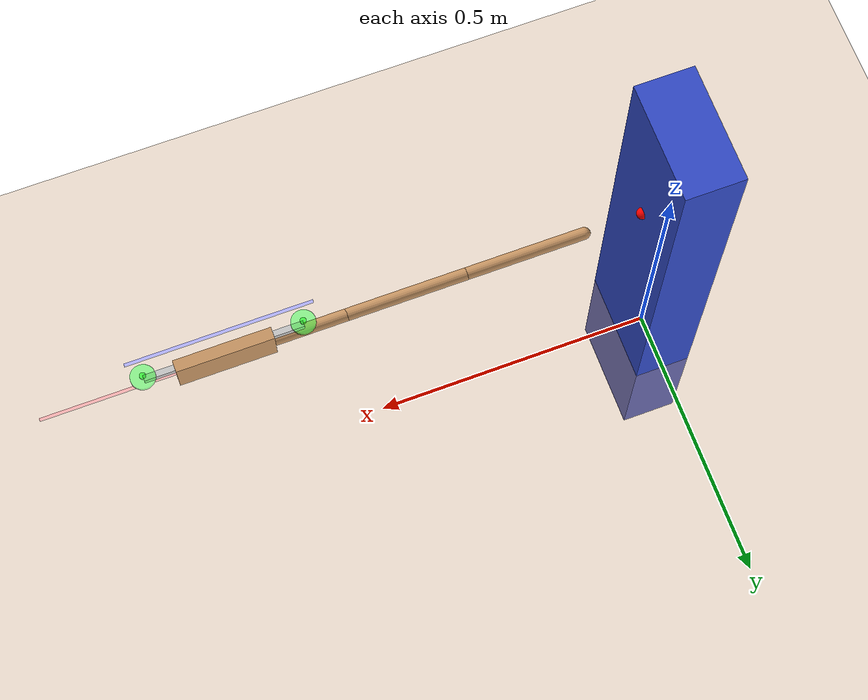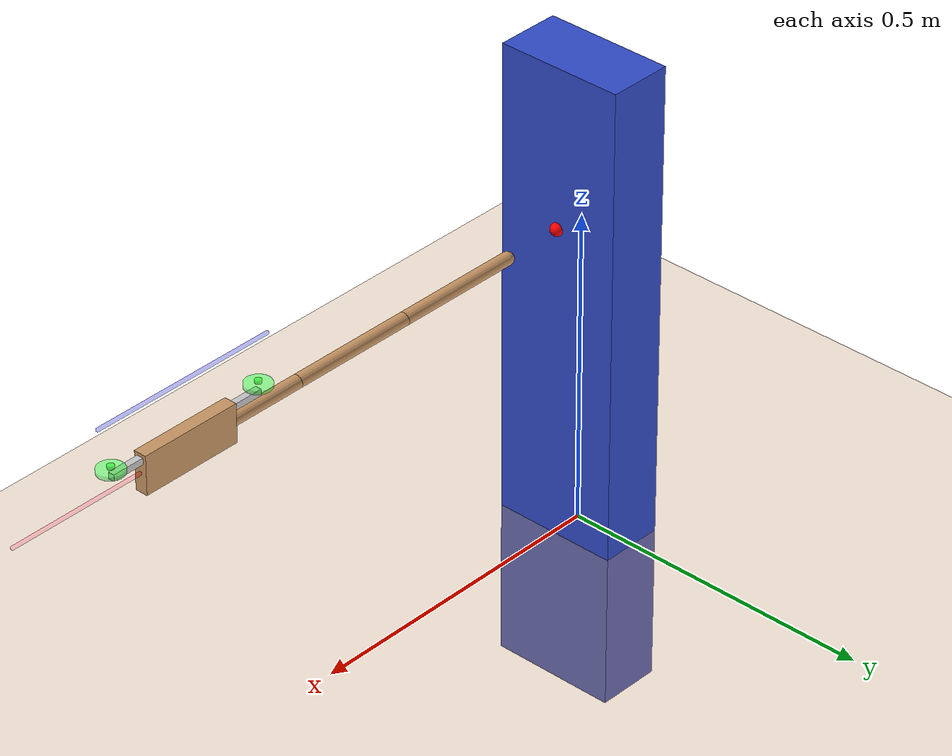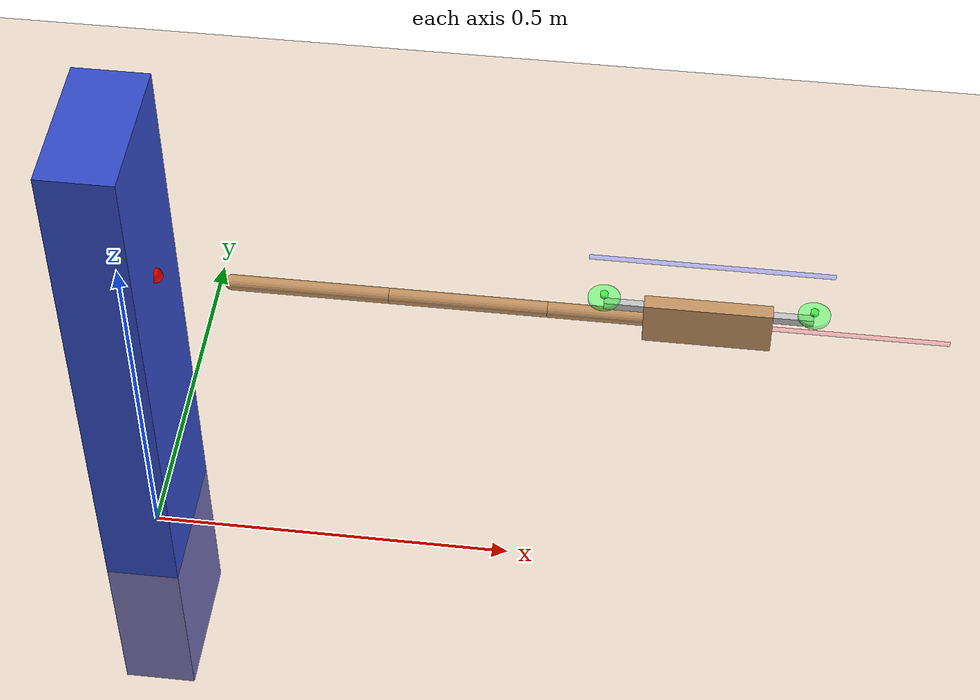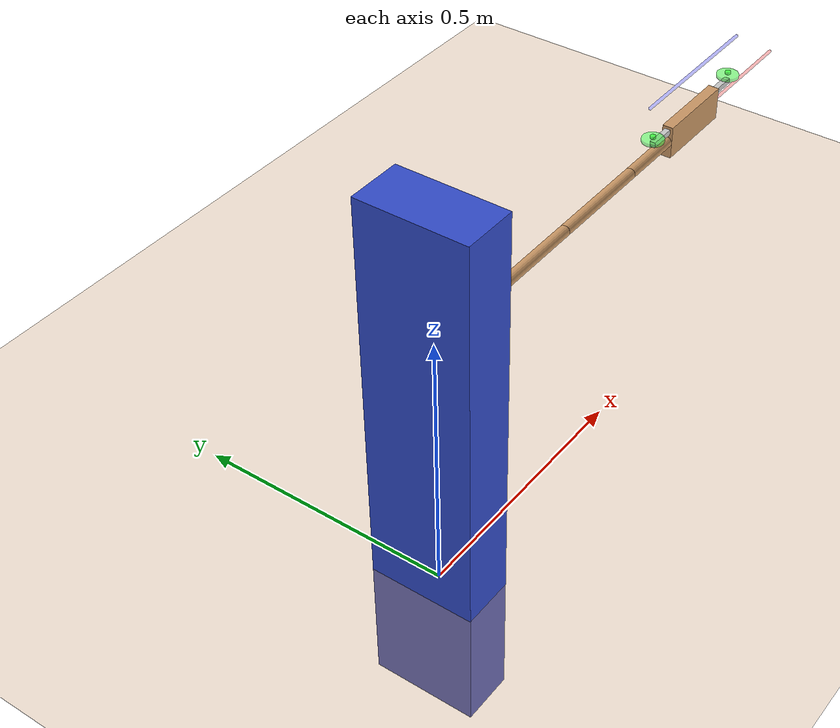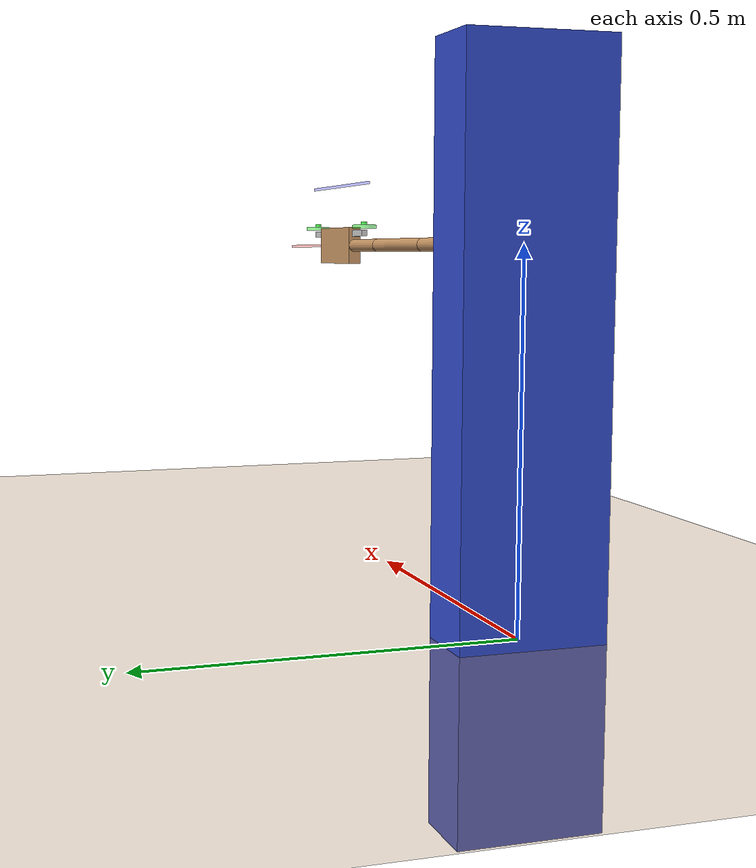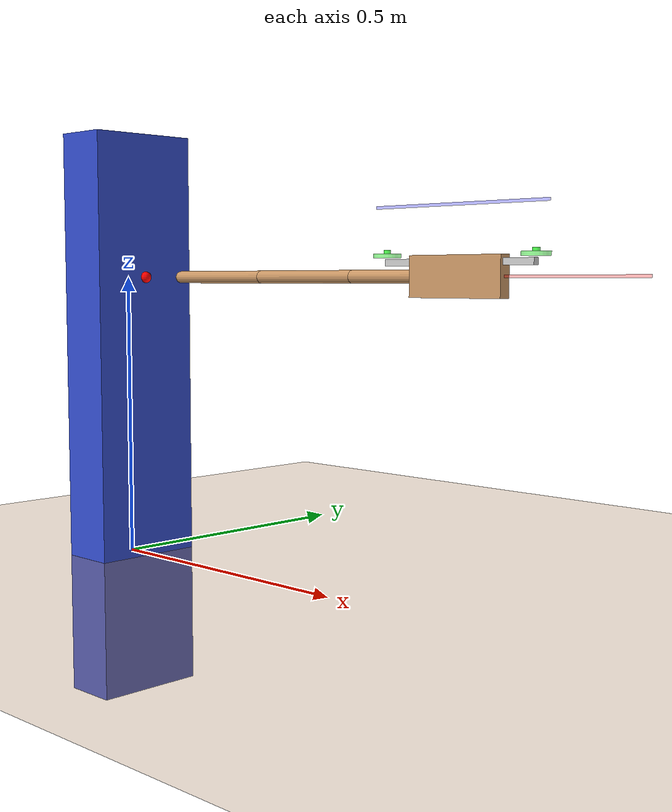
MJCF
<mujoco model="cantilever_2d_drone">

    <compiler angle="degree" inertiafromgeom="true"/>
    <option timestep="0.01" gravity="0 0 -9.81" integrator="RK4"/>

    <default>
        <joint damping="0.0005" stiffness="0.001" limited="true"/>
        <geom density="500" friction="0.8 0.1 0.1" rgba="0.8 0.6 0.4 1"/>
    </default>

    <asset>
        <!-- Texturas y materiales -->
        <texture builtin="gradient" height="100" width="100" rgb1="1 1 1" rgb2="0.6 0.8 1" type="skybox"/>
        <texture name="texplane" builtin="checker" height="100" width="100" rgb1="0.7 0.7 0.7" rgb2="0.9 0.9 0.9" type="2d"/>
        <material name="MatPlane" reflectance="0.3" shininess="1" specular="0.5" texrepeat="5 5" texture="texplane"/>
        <material name="MatBeam" specular="0.3" shininess="0.5" rgba="0.3 0.7 0.3 1"/>
        <material name="MatDrone" specular="0.5" shininess="1" rgba="0.8 0.2 0.2 1"/>
    </asset>

    <worldbody>

        <!-- 💡 Luz ambiental -->
        <light name="main_light" pos="1 1 1" dir="-1 -1 -2" diffuse="1 1 1" specular="0.3 0.3 0.3"/>

        <!-- 🌍 Piso y pared -->
        <geom name="floor" type="plane" size="5 5 0.1" pos="0 0 0" material="MatPlane"/>
        <geom name="wall" type="box" size="0.05 0.1 0.5" pos="0 0 0.25" rgba="0.2 0.3 0.8 1"/>

        <!-- ⚙️ Base fija de la viga -->
        <body name="beam_base" pos="0.05 0 0.5">
            <site name="base_site" pos="0 0 0" size="0.01" rgba="1 0 0 1"/>

            <!-- Segmentos del cantilever -->
            <body name="seg1" pos="0.1 0 0">
                <joint name="hinge1" type="hinge" axis="0 1 0" range="-15 15"/>
                <geom type="capsule" fromto="0 0 0 0.2 0 0" size="0.01" material="MatBeam"/>

                <body name="seg2" pos="0.2 0 0">
                    <joint name="hinge2" type="hinge" axis="0 1 0" range="-15 15"/>
                    <geom type="capsule" fromto="0 0 0 0.2 0 0" size="0.01" material="MatBeam"/>

                    <body name="seg3" pos="0.2 0 0">
                        <joint name="hinge3" type="hinge" axis="0 1 0" range="-15 15"/>
                        <geom type="capsule" fromto="0 0 0 0.2 0 0" size="0.01" material="MatBeam"/>

                        <!-- 🚁 Dron 2D al extremo libre -->
                        <body name="drone_2d" pos="0.2 0 0">
                            <!-- sin joint: queda fijo -->
                            <geom name="drone_body" type="box" size="0.08 0.01 0.03" material="MatDrone" mass="0.15"/>

                            <!-- brazos -->
                            <geom name="arm_left"  type="box" pos="-0.08 0 0.02" size="0.05 0.005 0.005" rgba="0.8 0.8 0.8 1"/>
                            <geom name="arm_right" type="box" pos=" 0.08 0 0.02" size="0.05 0.005 0.005" rgba="0.8 0.8 0.8 1"/>

                            <!-- hélices -->
                            <body name="prop_left" pos="-0.13 0 0.03">
                                <geom type="cylinder" size="0.02 0.003" rgba="0.3 1 0.3 0.6"/>
                                <site name="motor_left" pos="0 0 0.003" size="0.005" rgba="0 1 0 0.7" type="cylinder"/>
                            </body>

                            <body name="prop_right" pos="0.13 0 0.03">
                                <geom type="cylinder" size="0.02 0.003" rgba="0.3 1 0.3 0.6"/>
                                <site name="motor_right" pos="0 0 0.003" size="0.005" rgba="0 1 0 0.7" type="cylinder"/>
                            </body>

                            <!-- ejes de referencia -->
                            <site name="x_axis" type="box" pos="0.15 0 0" size="0.15 0.002 0.002" rgba="1 0 0 0.3"/>
                            <site name="z_axis" type="box" pos="0 0 0.1" size="0.15 0.002 0.002" rgba="0 0 1 0.3"/>
                        </body>

                    </body>
                </body>
            </body>
        </body>

    </worldbody>

    <!-- ⚙️ Actuadores (2 hélices) -->
    <actuator>
        <motor site="motor_left"  ctrlrange="0 2" gear="0 0 1 0 0 -0.05"/>
        <motor site="motor_right" ctrlrange="0 2" gear="0 0 1 0 0  0.05"/>
    </actuator>

    <!-- 📡 Sensores -->
    <sensor>
        <framepos  name="pos_drone"  objtype="body" objname="drone_2d"/>
        <framequat name="quat_drone" objtype="body" objname="drone_2d"/>
    </sensor>

    <!-- 🧩 Restricción 2D (bloquear movimiento en Y) -->
    <equality>
        <weld name="2d_constraint" active="true" body1="world" body2="beam_base" solimp="0.9 0.95 0.001" solref="0.02 1"/>
    </equality>

</mujoco>
